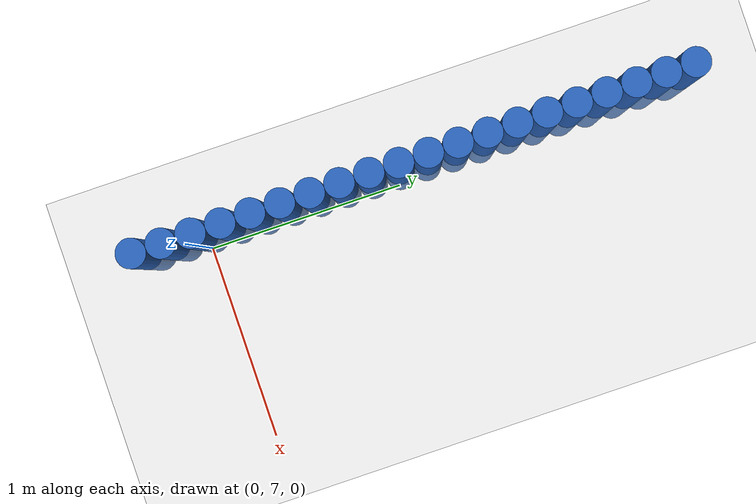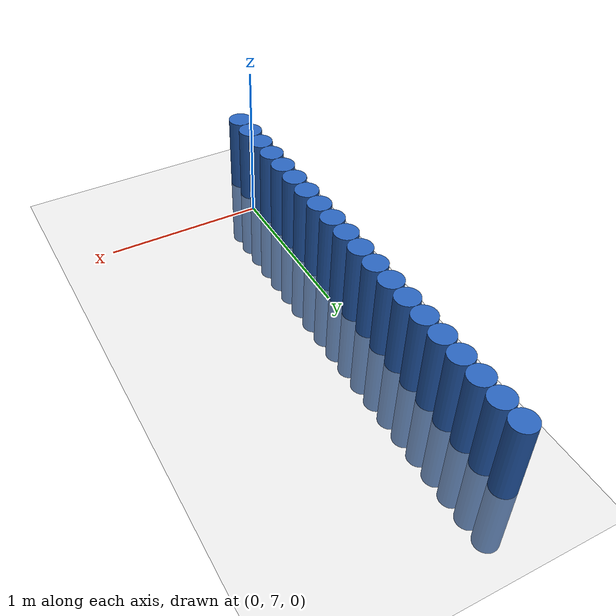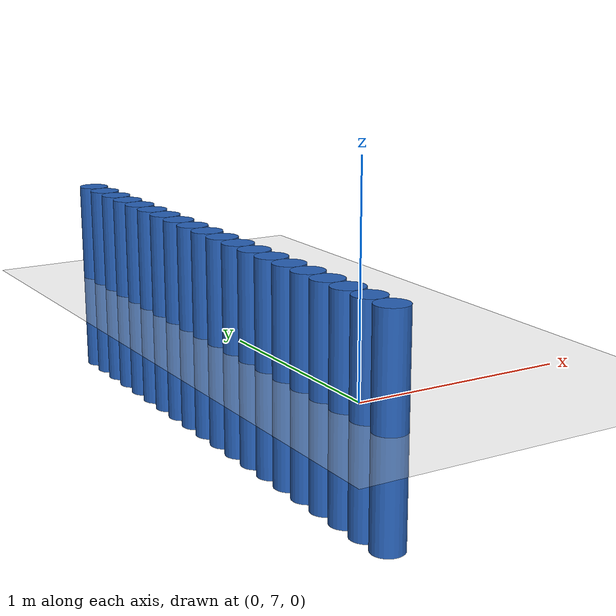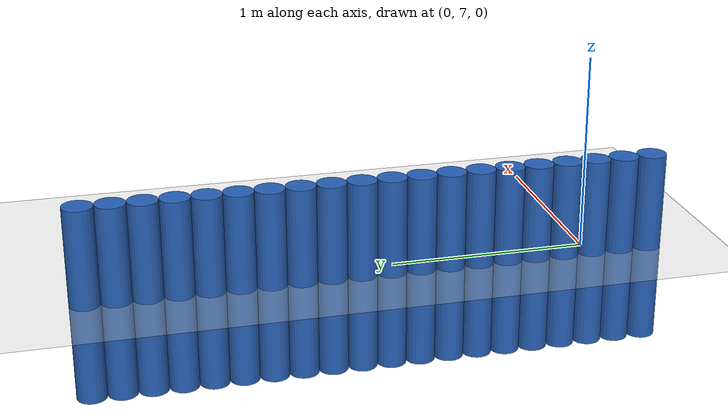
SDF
<sdf version="1.6">
 <world name="default">
  <model name="ground_plane">
   <static>1</static>
   <link name="link">
    <collision name="collision">
     <geometry><plane><normal>0 0 1</normal><size>100 100</size></plane></geometry>
     <surface><friction><ode><mu>100</mu><mu2>50</mu2></ode></friction></surface>
    </collision>
    <visual name="visual">
     <cast_shadows>0</cast_shadows>
     <geometry><plane><normal>0 0 1</normal><size>100 100</size></plane></geometry>
     <material>
      <script><uri>file://media/materials/scripts/gazebo.material</uri><name>Gazebo/Grey</name></script>
     </material>
    </visual>
   </link>
  </model>
  <model name="unit_cylinder_136">
   <static>1</static>
   <pose>-0.075000 6.675000 0.000000 0.000000 0.000000 0.000000</pose>
   <link name="link">
    <inertial>
     <mass>1</mass>
     <inertia><ixx>0.145833</ixx><ixy>0</ixy><ixz>0</ixz><iyy>0.145833</iyy><iyz>0</iyz><izz>0.125</izz></inertia>
    </inertial>
    <collision name="collision">
     <geometry><cylinder><radius>0.075000</radius><length>1</length></cylinder></geometry>
    </collision>
    <visual name="visual">
     <geometry><cylinder><radius>0.075000</radius><length>1</length></cylinder></geometry>
     <material>
      <ambient>0.152000 0.379000 0.720000 1</ambient>
      <diffuse>0.152000 0.379000 0.720000 1</diffuse>
     </material>
     <material>
      <script><name>Gazebo/Grey</name><uri>file://media/materials/scripts/gazebo.material</uri></script>
     </material>
    </visual>
   </link>
  </model>
  <model name="unit_cylinder_137">
   <static>1</static>
   <pose>-0.075000 6.825000 0.000000 0.000000 0.000000 0.000000</pose>
   <link name="link">
    <inertial>
     <mass>1</mass>
     <inertia><ixx>0.145833</ixx><ixy>0</ixy><ixz>0</ixz><iyy>0.145833</iyy><iyz>0</iyz><izz>0.125</izz></inertia>
    </inertial>
    <collision name="collision">
     <geometry><cylinder><radius>0.075000</radius><length>1</length></cylinder></geometry>
    </collision>
    <visual name="visual">
     <geometry><cylinder><radius>0.075000</radius><length>1</length></cylinder></geometry>
     <material>
      <ambient>0.152000 0.379000 0.720000 1</ambient>
      <diffuse>0.152000 0.379000 0.720000 1</diffuse>
     </material>
     <material>
      <script><name>Gazebo/Grey</name><uri>file://media/materials/scripts/gazebo.material</uri></script>
     </material>
    </visual>
   </link>
  </model>
  <model name="unit_cylinder_138">
   <static>1</static>
   <pose>-0.075000 6.975000 0.000000 0.000000 0.000000 0.000000</pose>
   <link name="link">
    <inertial>
     <mass>1</mass>
     <inertia><ixx>0.145833</ixx><ixy>0</ixy><ixz>0</ixz><iyy>0.145833</iyy><iyz>0</iyz><izz>0.125</izz></inertia>
    </inertial>
    <collision name="collision">
     <geometry><cylinder><radius>0.075000</radius><length>1</length></cylinder></geometry>
    </collision>
    <visual name="visual">
     <geometry><cylinder><radius>0.075000</radius><length>1</length></cylinder></geometry>
     <material>
      <ambient>0.152000 0.379000 0.720000 1</ambient>
      <diffuse>0.152000 0.379000 0.720000 1</diffuse>
     </material>
     <material>
      <script><name>Gazebo/Grey</name><uri>file://media/materials/scripts/gazebo.material</uri></script>
     </material>
    </visual>
   </link>
  </model>
  <model name="unit_cylinder_139">
   <static>1</static>
   <pose>-0.075000 7.125000 0.000000 0.000000 0.000000 0.000000</pose>
   <link name="link">
    <inertial>
     <mass>1</mass>
     <inertia><ixx>0.145833</ixx><ixy>0</ixy><ixz>0</ixz><iyy>0.145833</iyy><iyz>0</iyz><izz>0.125</izz></inertia>
    </inertial>
    <collision name="collision">
     <geometry><cylinder><radius>0.075000</radius><length>1</length></cylinder></geometry>
    </collision>
    <visual name="visual">
     <geometry><cylinder><radius>0.075000</radius><length>1</length></cylinder></geometry>
     <material>
      <ambient>0.152000 0.379000 0.720000 1</ambient>
      <diffuse>0.152000 0.379000 0.720000 1</diffuse>
     </material>
     <material>
      <script><name>Gazebo/Grey</name><uri>file://media/materials/scripts/gazebo.material</uri></script>
     </material>
    </visual>
   </link>
  </model>
  <model name="unit_cylinder_140">
   <static>1</static>
   <pose>-0.075000 7.275000 0.000000 0.000000 0.000000 0.000000</pose>
   <link name="link">
    <inertial>
     <mass>1</mass>
     <inertia><ixx>0.145833</ixx><ixy>0</ixy><ixz>0</ixz><iyy>0.145833</iyy><iyz>0</iyz><izz>0.125</izz></inertia>
    </inertial>
    <collision name="collision">
     <geometry><cylinder><radius>0.075000</radius><length>1</length></cylinder></geometry>
    </collision>
    <visual name="visual">
     <geometry><cylinder><radius>0.075000</radius><length>1</length></cylinder></geometry>
     <material>
      <ambient>0.152000 0.379000 0.720000 1</ambient>
      <diffuse>0.152000 0.379000 0.720000 1</diffuse>
     </material>
     <material>
      <script><name>Gazebo/Grey</name><uri>file://media/materials/scripts/gazebo.material</uri></script>
     </material>
    </visual>
   </link>
  </model>
  <model name="unit_cylinder_141">
   <static>1</static>
   <pose>-0.075000 7.425000 0.000000 0.000000 0.000000 0.000000</pose>
   <link name="link">
    <inertial>
     <mass>1</mass>
     <inertia><ixx>0.145833</ixx><ixy>0</ixy><ixz>0</ixz><iyy>0.145833</iyy><iyz>0</iyz><izz>0.125</izz></inertia>
    </inertial>
    <collision name="collision">
     <geometry><cylinder><radius>0.075000</radius><length>1</length></cylinder></geometry>
    </collision>
    <visual name="visual">
     <geometry><cylinder><radius>0.075000</radius><length>1</length></cylinder></geometry>
     <material>
      <ambient>0.152000 0.379000 0.720000 1</ambient>
      <diffuse>0.152000 0.379000 0.720000 1</diffuse>
     </material>
     <material>
      <script><name>Gazebo/Grey</name><uri>file://media/materials/scripts/gazebo.material</uri></script>
     </material>
    </visual>
   </link>
  </model>
  <model name="unit_cylinder_142">
   <static>1</static>
   <pose>-0.075000 7.575000 0.000000 0.000000 0.000000 0.000000</pose>
   <link name="link">
    <inertial>
     <mass>1</mass>
     <inertia><ixx>0.145833</ixx><ixy>0</ixy><ixz>0</ixz><iyy>0.145833</iyy><iyz>0</iyz><izz>0.125</izz></inertia>
    </inertial>
    <collision name="collision">
     <geometry><cylinder><radius>0.075000</radius><length>1</length></cylinder></geometry>
    </collision>
    <visual name="visual">
     <geometry><cylinder><radius>0.075000</radius><length>1</length></cylinder></geometry>
     <material>
      <ambient>0.152000 0.379000 0.720000 1</ambient>
      <diffuse>0.152000 0.379000 0.720000 1</diffuse>
     </material>
     <material>
      <script><name>Gazebo/Grey</name><uri>file://media/materials/scripts/gazebo.material</uri></script>
     </material>
    </visual>
   </link>
  </model>
  <model name="unit_cylinder_143">
   <static>1</static>
   <pose>-0.075000 7.725000 0.000000 0.000000 0.000000 0.000000</pose>
   <link name="link">
    <inertial>
     <mass>1</mass>
     <inertia><ixx>0.145833</ixx><ixy>0</ixy><ixz>0</ixz><iyy>0.145833</iyy><iyz>0</iyz><izz>0.125</izz></inertia>
    </inertial>
    <collision name="collision">
     <geometry><cylinder><radius>0.075000</radius><length>1</length></cylinder></geometry>
    </collision>
    <visual name="visual">
     <geometry><cylinder><radius>0.075000</radius><length>1</length></cylinder></geometry>
     <material>
      <ambient>0.152000 0.379000 0.720000 1</ambient>
      <diffuse>0.152000 0.379000 0.720000 1</diffuse>
     </material>
     <material>
      <script><name>Gazebo/Grey</name><uri>file://media/materials/scripts/gazebo.material</uri></script>
     </material>
    </visual>
   </link>
  </model>
  <model name="unit_cylinder_144">
   <static>1</static>
   <pose>-0.075000 7.875000 0.000000 0.000000 0.000000 0.000000</pose>
   <link name="link">
    <inertial>
     <mass>1</mass>
     <inertia><ixx>0.145833</ixx><ixy>0</ixy><ixz>0</ixz><iyy>0.145833</iyy><iyz>0</iyz><izz>0.125</izz></inertia>
    </inertial>
    <collision name="collision">
     <geometry><cylinder><radius>0.075000</radius><length>1</length></cylinder></geometry>
    </collision>
    <visual name="visual">
     <geometry><cylinder><radius>0.075000</radius><length>1</length></cylinder></geometry>
     <material>
      <ambient>0.152000 0.379000 0.720000 1</ambient>
      <diffuse>0.152000 0.379000 0.720000 1</diffuse>
     </material>
     <material>
      <script><name>Gazebo/Grey</name><uri>file://media/materials/scripts/gazebo.material</uri></script>
     </material>
    </visual>
   </link>
  </model>
  <model name="unit_cylinder_145">
   <static>1</static>
   <pose>-0.075000 8.025000 0.000000 0.000000 0.000000 0.000000</pose>
   <link name="link">
    <inertial>
     <mass>1</mass>
     <inertia><ixx>0.145833</ixx><ixy>0</ixy><ixz>0</ixz><iyy>0.145833</iyy><iyz>0</iyz><izz>0.125</izz></inertia>
    </inertial>
    <collision name="collision">
     <geometry><cylinder><radius>0.075000</radius><length>1</length></cylinder></geometry>
    </collision>
    <visual name="visual">
     <geometry><cylinder><radius>0.075000</radius><length>1</length></cylinder></geometry>
     <material>
      <ambient>0.152000 0.379000 0.720000 1</ambient>
      <diffuse>0.152000 0.379000 0.720000 1</diffuse>
     </material>
     <material>
      <script><name>Gazebo/Grey</name><uri>file://media/materials/scripts/gazebo.material</uri></script>
     </material>
    </visual>
   </link>
  </model>
  <model name="unit_cylinder_146">
   <static>1</static>
   <pose>-0.075000 8.175000 0.000000 0.000000 0.000000 0.000000</pose>
   <link name="link">
    <inertial>
     <mass>1</mass>
     <inertia><ixx>0.145833</ixx><ixy>0</ixy><ixz>0</ixz><iyy>0.145833</iyy><iyz>0</iyz><izz>0.125</izz></inertia>
    </inertial>
    <collision name="collision">
     <geometry><cylinder><radius>0.075000</radius><length>1</length></cylinder></geometry>
    </collision>
    <visual name="visual">
     <geometry><cylinder><radius>0.075000</radius><length>1</length></cylinder></geometry>
     <material>
      <ambient>0.152000 0.379000 0.720000 1</ambient>
      <diffuse>0.152000 0.379000 0.720000 1</diffuse>
     </material>
     <material>
      <script><name>Gazebo/Grey</name><uri>file://media/materials/scripts/gazebo.material</uri></script>
     </material>
    </visual>
   </link>
  </model>
  <model name="unit_cylinder_147">
   <static>1</static>
   <pose>-0.075000 8.325000 0.000000 0.000000 0.000000 0.000000</pose>
   <link name="link">
    <inertial>
     <mass>1</mass>
     <inertia><ixx>0.145833</ixx><ixy>0</ixy><ixz>0</ixz><iyy>0.145833</iyy><iyz>0</iyz><izz>0.125</izz></inertia>
    </inertial>
    <collision name="collision">
     <geometry><cylinder><radius>0.075000</radius><length>1</length></cylinder></geometry>
    </collision>
    <visual name="visual">
     <geometry><cylinder><radius>0.075000</radius><length>1</length></cylinder></geometry>
     <material>
      <ambient>0.152000 0.379000 0.720000 1</ambient>
      <diffuse>0.152000 0.379000 0.720000 1</diffuse>
     </material>
     <material>
      <script><name>Gazebo/Grey</name><uri>file://media/materials/scripts/gazebo.material</uri></script>
     </material>
    </visual>
   </link>
  </model>
  <model name="unit_cylinder_148">
   <static>1</static>
   <pose>-0.075000 8.475000 0.000000 0.000000 0.000000 0.000000</pose>
   <link name="link">
    <inertial>
     <mass>1</mass>
     <inertia><ixx>0.145833</ixx><ixy>0</ixy><ixz>0</ixz><iyy>0.145833</iyy><iyz>0</iyz><izz>0.125</izz></inertia>
    </inertial>
    <collision name="collision">
     <geometry><cylinder><radius>0.075000</radius><length>1</length></cylinder></geometry>
    </collision>
    <visual name="visual">
     <geometry><cylinder><radius>0.075000</radius><length>1</length></cylinder></geometry>
     <material>
      <ambient>0.152000 0.379000 0.720000 1</ambient>
      <diffuse>0.152000 0.379000 0.720000 1</diffuse>
     </material>
     <material>
      <script><name>Gazebo/Grey</name><uri>file://media/materials/scripts/gazebo.material</uri></script>
     </material>
    </visual>
   </link>
  </model>
  <model name="unit_cylinder_149">
   <static>1</static>
   <pose>-0.075000 8.625000 0.000000 0.000000 0.000000 0.000000</pose>
   <link name="link">
    <inertial>
     <mass>1</mass>
     <inertia><ixx>0.145833</ixx><ixy>0</ixy><ixz>0</ixz><iyy>0.145833</iyy><iyz>0</iyz><izz>0.125</izz></inertia>
    </inertial>
    <collision name="collision">
     <geometry><cylinder><radius>0.075000</radius><length>1</length></cylinder></geometry>
    </collision>
    <visual name="visual">
     <geometry><cylinder><radius>0.075000</radius><length>1</length></cylinder></geometry>
     <material>
      <ambient>0.152000 0.379000 0.720000 1</ambient>
      <diffuse>0.152000 0.379000 0.720000 1</diffuse>
     </material>
     <material>
      <script><name>Gazebo/Grey</name><uri>file://media/materials/scripts/gazebo.material</uri></script>
     </material>
    </visual>
   </link>
  </model>
  <model name="unit_cylinder_150">
   <static>1</static>
   <pose>-0.075000 8.775000 0.000000 0.000000 0.000000 0.000000</pose>
   <link name="link">
    <inertial>
     <mass>1</mass>
     <inertia><ixx>0.145833</ixx><ixy>0</ixy><ixz>0</ixz><iyy>0.145833</iyy><iyz>0</iyz><izz>0.125</izz></inertia>
    </inertial>
    <collision name="collision">
     <geometry><cylinder><radius>0.075000</radius><length>1</length></cylinder></geometry>
    </collision>
    <visual name="visual">
     <geometry><cylinder><radius>0.075000</radius><length>1</length></cylinder></geometry>
     <material>
      <ambient>0.152000 0.379000 0.720000 1</ambient>
      <diffuse>0.152000 0.379000 0.720000 1</diffuse>
     </material>
     <material>
      <script><name>Gazebo/Grey</name><uri>file://media/materials/scripts/gazebo.material</uri></script>
     </material>
    </visual>
   </link>
  </model>
  <model name="unit_cylinder_151">
   <static>1</static>
   <pose>-0.075000 8.925000 0.000000 0.000000 0.000000 0.000000</pose>
   <link name="link">
    <inertial>
     <mass>1</mass>
     <inertia><ixx>0.145833</ixx><ixy>0</ixy><ixz>0</ixz><iyy>0.145833</iyy><iyz>0</iyz><izz>0.125</izz></inertia>
    </inertial>
    <collision name="collision">
     <geometry><cylinder><radius>0.075000</radius><length>1</length></cylinder></geometry>
    </collision>
    <visual name="visual">
     <geometry><cylinder><radius>0.075000</radius><length>1</length></cylinder></geometry>
     <material>
      <ambient>0.152000 0.379000 0.720000 1</ambient>
      <diffuse>0.152000 0.379000 0.720000 1</diffuse>
     </material>
     <material>
      <script><name>Gazebo/Grey</name><uri>file://media/materials/scripts/gazebo.material</uri></script>
     </material>
    </visual>
   </link>
  </model>
  <model name="unit_cylinder_152">
   <static>1</static>
   <pose>-0.075000 9.075000 0.000000 0.000000 0.000000 0.000000</pose>
   <link name="link">
    <inertial>
     <mass>1</mass>
     <inertia><ixx>0.145833</ixx><ixy>0</ixy><ixz>0</ixz><iyy>0.145833</iyy><iyz>0</iyz><izz>0.125</izz></inertia>
    </inertial>
    <collision name="collision">
     <geometry><cylinder><radius>0.075000</radius><length>1</length></cylinder></geometry>
    </collision>
    <visual name="visual">
     <geometry><cylinder><radius>0.075000</radius><length>1</length></cylinder></geometry>
     <material>
      <ambient>0.152000 0.379000 0.720000 1</ambient>
      <diffuse>0.152000 0.379000 0.720000 1</diffuse>
     </material>
     <material>
      <script><name>Gazebo/Grey</name><uri>file://media/materials/scripts/gazebo.material</uri></script>
     </material>
    </visual>
   </link>
  </model>
  <model name="unit_cylinder_153">
   <static>1</static>
   <pose>-0.075000 9.225000 0.000000 0.000000 0.000000 0.000000</pose>
   <link name="link">
    <inertial>
     <mass>1</mass>
     <inertia><ixx>0.145833</ixx><ixy>0</ixy><ixz>0</ixz><iyy>0.145833</iyy><iyz>0</iyz><izz>0.125</izz></inertia>
    </inertial>
    <collision name="collision">
     <geometry><cylinder><radius>0.075000</radius><length>1</length></cylinder></geometry>
    </collision>
    <visual name="visual">
     <geometry><cylinder><radius>0.075000</radius><length>1</length></cylinder></geometry>
     <material>
      <ambient>0.152000 0.379000 0.720000 1</ambient>
      <diffuse>0.152000 0.379000 0.720000 1</diffuse>
     </material>
     <material>
      <script><name>Gazebo/Grey</name><uri>file://media/materials/scripts/gazebo.material</uri></script>
     </material>
    </visual>
   </link>
  </model>
  <model name="unit_cylinder_154">
   <static>1</static>
   <pose>-0.075000 9.375000 0.000000 0.000000 0.000000 0.000000</pose>
   <link name="link">
    <inertial>
     <mass>1</mass>
     <inertia><ixx>0.145833</ixx><ixy>0</ixy><ixz>0</ixz><iyy>0.145833</iyy><iyz>0</iyz><izz>0.125</izz></inertia>
    </inertial>
    <collision name="collision">
     <geometry><cylinder><radius>0.075000</radius><length>1</length></cylinder></geometry>
    </collision>
    <visual name="visual">
     <geometry><cylinder><radius>0.075000</radius><length>1</length></cylinder></geometry>
     <material>
      <ambient>0.152000 0.379000 0.720000 1</ambient>
      <diffuse>0.152000 0.379000 0.720000 1</diffuse>
     </material>
     <material>
      <script><name>Gazebo/Grey</name><uri>file://media/materials/scripts/gazebo.material</uri></script>
     </material>
    </visual>
   </link>
  </model>
  <model name="unit_cylinder_155">
   <static>1</static>
   <pose>-0.075000 9.525000 0.000000 0.000000 0.000000 0.000000</pose>
   <link name="link">
    <inertial>
     <mass>1</mass>
     <inertia><ixx>0.145833</ixx><ixy>0</ixy><ixz>0</ixz><iyy>0.145833</iyy><iyz>0</iyz><izz>0.125</izz></inertia>
    </inertial>
    <collision name="collision">
     <geometry><cylinder><radius>0.075000</radius><length>1</length></cylinder></geometry>
    </collision>
    <visual name="visual">
     <geometry><cylinder><radius>0.075000</radius><length>1</length></cylinder></geometry>
     <material>
      <ambient>0.152000 0.379000 0.720000 1</ambient>
      <diffuse>0.152000 0.379000 0.720000 1</diffuse>
     </material>
     <material>
      <script><name>Gazebo/Grey</name><uri>file://media/materials/scripts/gazebo.material</uri></script>
     </material>
    </visual>
   </link>
  </model>
 </world>
</sdf>
